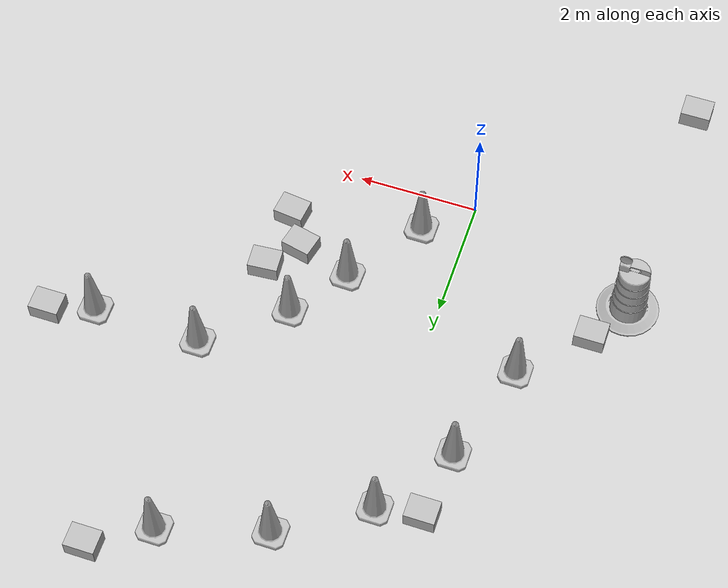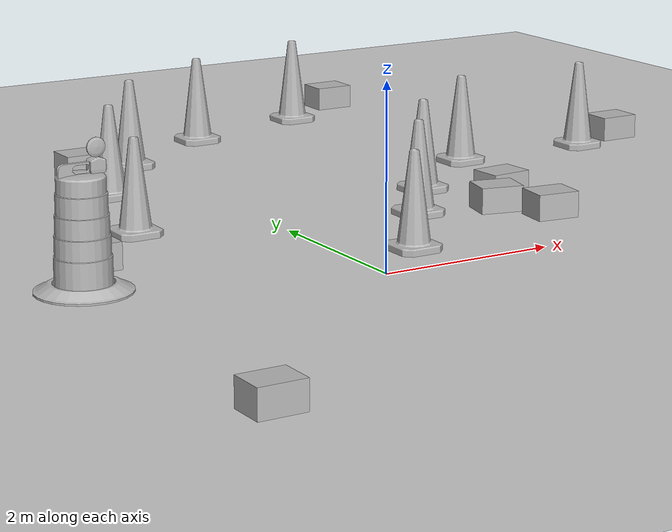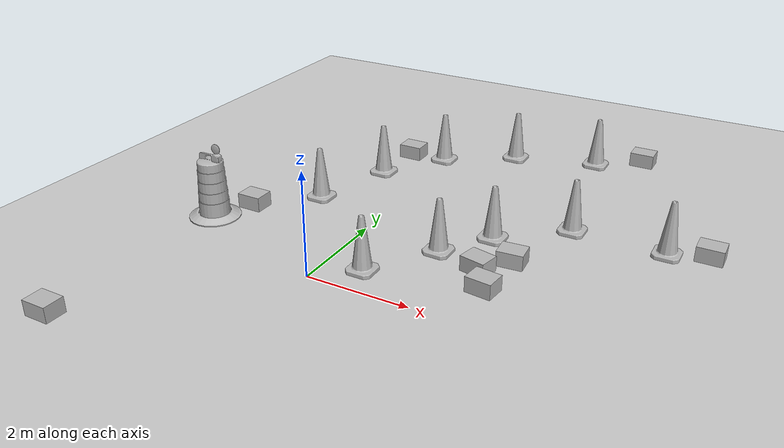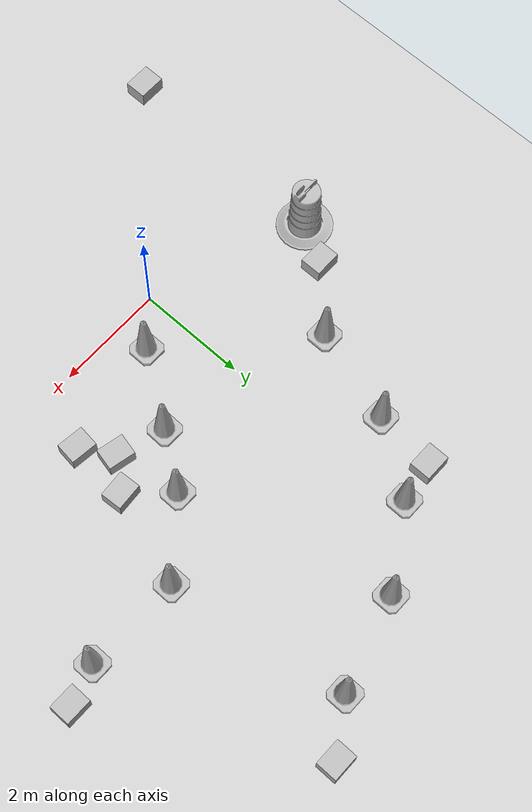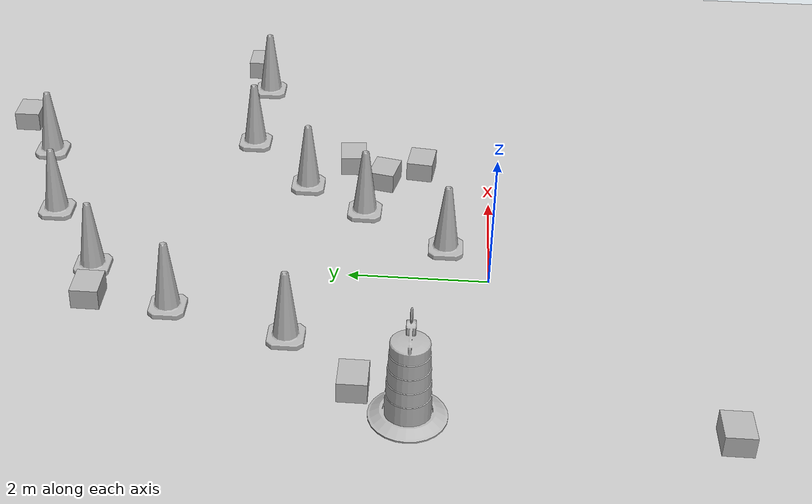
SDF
<sdf version="1.7">
 <world name="default">
  <light name="sun" type="directional">
   <pose>0 0 10 0 -0 0</pose>
   <diffuse>0.8 0.8 0.8 1</diffuse>
   <specular>0.2 0.2 0.2 1</specular>
   <attenuation>
    <range>1000</range>
    <constant>0.9</constant>
    <linear>0.01</linear>
    <quadratic>0.001</quadratic>
   </attenuation>
   <direction>-0.5 0.1 -0.9</direction>
   <spot><inner_angle>0</inner_angle><outer_angle>0</outer_angle><falloff>0</falloff></spot>
  </light>
  <model name="ground_plane">
   <static>1</static>
   <link name="link">
    <collision name="collision">
     <geometry><plane><normal>0 0 1</normal><size>100 100</size></plane></geometry>
     <surface>
      <contact><collide_bitmask>65535</collide_bitmask></contact>
      <friction><ode><mu>100</mu><mu2>50</mu2></ode></friction>
     </surface>
    </collision>
    <visual name="visual">
     <cast_shadows>0</cast_shadows>
     <geometry><plane><normal>0 0 1</normal><size>100 100</size></plane></geometry>
     <material>
      <script><uri>file://media/materials/scripts/gazebo.material</uri><name>Gazebo/Grey</name></script>
     </material>
    </visual>
   </link>
  </model>
  <gravity>0 0 -9.8</gravity>
  <magnetic_field>6e-06 2.3e-05 -4.2e-05</magnetic_field>
  <atmosphere type="adiabatic"/>
  <physics type="ode">
   <max_step_size>0.001</max_step_size>
   <real_time_factor>1</real_time_factor>
   <real_time_update_rate>1000</real_time_update_rate>
  </physics>
  <scene><ambient>0.4 0.4 0.4 1</ambient><background>0.7 0.7 0.7 1</background><shadows>1</shadows></scene>
  <spherical_coordinates>
   <surface_model>EARTH_WGS84</surface_model>
   <latitude_deg>0</latitude_deg>
   <longitude_deg>0</longitude_deg>
   <elevation>0</elevation>
   <heading_deg>0</heading_deg>
  </spherical_coordinates>
  <model name="cardboard_box">
   <pose>-3.02928 -2.994 0.149 0 -0 0</pose>
   <link name="link">
    <inertial>
     <mass>2</mass>
     <inertia>
      <ixx>0.0416667</ixx>
      <ixy>0</ixy>
      <ixz>0</ixz>
      <iyy>0.0566667</iyy>
      <iyz>0</iyz>
      <izz>0.0683333</izz>
     </inertia>
    </inertial>
    <collision name="collision">
     <geometry><box><size>0.5 0.4 0.3</size></box></geometry>
     <surface>
      <friction><ode><mu>1</mu><mu2>1</mu2></ode></friction>
      <contact><ode><kp>1e+07</kp><kd>1</kd><min_depth>0.001</min_depth><max_vel>0.1</max_vel></ode></contact>
     </surface>
    </collision>
    <visual name="visual">
     <pose>0 0 -0.15 0 -0 0</pose>
     <geometry>
      <mesh><uri>model://cardboard_box/meshes/cardboard_box.dae</uri><scale>1.25932 1.00745 0.755591</scale></mesh>
     </geometry>
    </visual>
   </link>
  </model>
  <model name="Construction Barrel">
   <link name="link">
    <inertial>
     <pose>0 0 0.4 0 -0 0</pose>
     <mass>500</mass>
     <inertia><ixx>51.2096</ixx><iyy>51.2096</iyy><izz>25</izz><ixy>0</ixy><ixz>0</ixz><iyz>0</iyz></inertia>
    </inertial>
    <collision name="collision">
     <geometry><mesh><uri>model://construction_barrel/meshes/construction_barrel.dae</uri></mesh></geometry>
    </collision>
    <visual name="visual">
     <geometry><mesh><uri>model://construction_barrel/meshes/construction_barrel.dae</uri></mesh></geometry>
    </visual>
   </link>
   <pose>-2.89809 1.02762 -1e-06 4e-06 -2e-06 -2.8e-05</pose>
  </model>
  <model name="Construction Cone">
   <link name="link">
    <collision name="collision">
     <geometry>
      <mesh><scale>10 10 10</scale><uri>model://construction_cone/meshes/construction_cone.dae</uri></mesh>
     </geometry>
    </collision>
    <visual name="visual">
     <geometry>
      <mesh><scale>10 10 10</scale><uri>model://construction_cone/meshes/construction_cone.dae</uri></mesh>
     </geometry>
    </visual>
    <inertial>
     <inertia><ixx>1</ixx><ixy>0</ixy><ixz>0</ixz><iyy>1</iyy><iyz>0</iyz><izz>1</izz></inertia>
     <mass>1</mass>
    </inertial>
   </link>
   <pose>-1.50576 2.72131 -0 0 -0 0</pose>
  </model>
  <model name="Construction Cone_0">
   <link name="link">
    <collision name="collision">
     <geometry>
      <mesh><scale>10 10 10</scale><uri>model://construction_cone/meshes/construction_cone.dae</uri></mesh>
     </geometry>
    </collision>
    <visual name="visual">
     <geometry>
      <mesh><scale>10 10 10</scale><uri>model://construction_cone/meshes/construction_cone.dae</uri></mesh>
     </geometry>
    </visual>
    <inertial>
     <inertia><ixx>1</ixx><ixy>0</ixy><ixz>0</ixz><iyy>1</iyy><iyz>0</iyz><izz>1</izz></inertia>
     <mass>1</mass>
    </inertial>
   </link>
   <pose>-1 4.42378 -0 0 -0 0</pose>
  </model>
  <model name="Construction Cone_0_clone">
   <link name="link">
    <collision name="collision">
     <geometry>
      <mesh><scale>10 10 10</scale><uri>model://construction_cone/meshes/construction_cone.dae</uri></mesh>
     </geometry>
    </collision>
    <visual name="visual">
     <geometry>
      <mesh><scale>10 10 10</scale><uri>model://construction_cone/meshes/construction_cone.dae</uri></mesh>
     </geometry>
    </visual>
    <inertial>
     <inertia><ixx>1</ixx><ixy>0</ixy><ixz>0</ixz><iyy>1</iyy><iyz>0</iyz><izz>1</izz></inertia>
     <mass>1</mass>
    </inertial>
   </link>
   <pose>-0.133963 5.67409 -0 0 -1e-06 0</pose>
  </model>
  <model name="Construction Cone_0_clone_0">
   <link name="link">
    <collision name="collision">
     <geometry>
      <mesh><scale>10 10 10</scale><uri>model://construction_cone/meshes/construction_cone.dae</uri></mesh>
     </geometry>
    </collision>
    <visual name="visual">
     <geometry>
      <mesh><scale>10 10 10</scale><uri>model://construction_cone/meshes/construction_cone.dae</uri></mesh>
     </geometry>
    </visual>
    <inertial>
     <inertia><ixx>1</ixx><ixy>0</ixy><ixz>0</ixz><iyy>1</iyy><iyz>0</iyz><izz>1</izz></inertia>
     <mass>1</mass>
    </inertial>
   </link>
   <pose>1.24709 6.55085 -0 0 -1e-06 0</pose>
  </model>
  <model name="Construction Cone_0_clone_1">
   <link name="link">
    <collision name="collision">
     <geometry>
      <mesh><scale>10 10 10</scale><uri>model://construction_cone/meshes/construction_cone.dae</uri></mesh>
     </geometry>
    </collision>
    <visual name="visual">
     <geometry>
      <mesh><scale>10 10 10</scale><uri>model://construction_cone/meshes/construction_cone.dae</uri></mesh>
     </geometry>
    </visual>
    <inertial>
     <inertia><ixx>1</ixx><ixy>0</ixy><ixz>0</ixz><iyy>1</iyy><iyz>0</iyz><izz>1</izz></inertia>
     <mass>1</mass>
    </inertial>
   </link>
   <pose>2.9537 7.05208 -0 0 -0 0</pose>
  </model>
  <model name="Construction Cone_0_clone_2">
   <link name="link">
    <collision name="collision">
     <geometry>
      <mesh><scale>10 10 10</scale><uri>model://construction_cone/meshes/construction_cone.dae</uri></mesh>
     </geometry>
    </collision>
    <visual name="visual">
     <geometry>
      <mesh><scale>10 10 10</scale><uri>model://construction_cone/meshes/construction_cone.dae</uri></mesh>
     </geometry>
    </visual>
    <inertial>
     <inertia><ixx>1</ixx><ixy>0</ixy><ixz>0</ixz><iyy>1</iyy><iyz>0</iyz><izz>1</izz></inertia>
     <mass>1</mass>
    </inertial>
   </link>
   <pose>0.741697 0.628624 -1e-05 -0 -0 -0</pose>
  </model>
  <model name="Construction Cone_0_clone_3">
   <link name="link">
    <collision name="collision">
     <geometry>
      <mesh><scale>10 10 10</scale><uri>model://construction_cone/meshes/construction_cone.dae</uri></mesh>
     </geometry>
    </collision>
    <visual name="visual">
     <geometry>
      <mesh><scale>10 10 10</scale><uri>model://construction_cone/meshes/construction_cone.dae</uri></mesh>
     </geometry>
    </visual>
    <inertial>
     <inertia><ixx>1</ixx><ixy>0</ixy><ixz>0</ixz><iyy>1</iyy><iyz>0</iyz><izz>1</izz></inertia>
     <mass>1</mass>
    </inertial>
   </link>
   <pose>1.61041 1.87371 -0 0 -1e-06 -0.020703</pose>
  </model>
  <model name="Construction Cone_0_clone_4">
   <link name="link">
    <collision name="collision">
     <geometry>
      <mesh><scale>10 10 10</scale><uri>model://construction_cone/meshes/construction_cone.dae</uri></mesh>
     </geometry>
    </collision>
    <visual name="visual">
     <geometry>
      <mesh><scale>10 10 10</scale><uri>model://construction_cone/meshes/construction_cone.dae</uri></mesh>
     </geometry>
    </visual>
    <inertial>
     <inertia><ixx>1</ixx><ixy>0</ixy><ixz>0</ixz><iyy>1</iyy><iyz>0</iyz><izz>1</izz></inertia>
     <mass>1</mass>
    </inertial>
   </link>
   <pose>2.28011 2.80323 -8e-06 1e-06 -0 0</pose>
  </model>
  <model name="Construction Cone_0_clone_5">
   <link name="link">
    <collision name="collision">
     <geometry>
      <mesh><scale>10 10 10</scale><uri>model://construction_cone/meshes/construction_cone.dae</uri></mesh>
     </geometry>
    </collision>
    <visual name="visual">
     <geometry>
      <mesh><scale>10 10 10</scale><uri>model://construction_cone/meshes/construction_cone.dae</uri></mesh>
     </geometry>
    </visual>
    <inertial>
     <inertia><ixx>1</ixx><ixy>0</ixy><ixz>0</ixz><iyy>1</iyy><iyz>0</iyz><izz>1</izz></inertia>
     <mass>1</mass>
    </inertial>
   </link>
   <pose>3.49548 3.79807 -0 0 -0 0</pose>
  </model>
  <model name="Construction Cone_0_clone_6">
   <link name="link">
    <collision name="collision">
     <geometry>
      <mesh><scale>10 10 10</scale><uri>model://construction_cone/meshes/construction_cone.dae</uri></mesh>
     </geometry>
    </collision>
    <visual name="visual">
     <geometry>
      <mesh><scale>10 10 10</scale><uri>model://construction_cone/meshes/construction_cone.dae</uri></mesh>
     </geometry>
    </visual>
    <inertial>
     <inertia><ixx>1</ixx><ixy>0</ixy><ixz>0</ixz><iyy>1</iyy><iyz>0</iyz><izz>1</izz></inertia>
     <mass>1</mass>
    </inertial>
   </link>
   <pose>5.28375 3.76325 -0 0 -1e-06 0</pose>
  </model>
  <model name="cardboard_box_clone">
   <pose>2.50396 1.62001 0.149 0 -0 -0.220731</pose>
   <link name="link">
    <inertial>
     <mass>2</mass>
     <inertia>
      <ixx>0.0416667</ixx>
      <ixy>0</ixy>
      <ixz>0</ixz>
      <iyy>0.0566667</iyy>
      <iyz>0</iyz>
      <izz>0.0683333</izz>
     </inertia>
    </inertial>
    <collision name="collision">
     <geometry><box><size>0.5 0.4 0.3</size></box></geometry>
     <surface>
      <friction><ode><mu>1</mu><mu2>1</mu2></ode></friction>
      <contact><ode><kp>1e+07</kp><kd>1</kd><min_depth>0.001</min_depth><max_vel>0.1</max_vel></ode></contact>
     </surface>
    </collision>
    <visual name="visual">
     <pose>0 0 -0.15 0 -0 0</pose>
     <geometry>
      <mesh><uri>model://cardboard_box/meshes/cardboard_box.dae</uri><scale>1.25932 1.00745 0.755591</scale></mesh>
     </geometry>
    </visual>
   </link>
  </model>
  <model name="cardboard_box_clone_0">
   <pose>2.93874 2.14078 0.149203 -0.001017 -0 0.075653</pose>
   <link name="link">
    <inertial>
     <mass>2</mass>
     <inertia>
      <ixx>0.0416667</ixx>
      <ixy>0</ixy>
      <ixz>0</ixz>
      <iyy>0.0566667</iyy>
      <iyz>0</iyz>
      <izz>0.0683333</izz>
     </inertia>
    </inertial>
    <collision name="collision">
     <geometry><box><size>0.5 0.4 0.3</size></box></geometry>
     <surface>
      <friction><ode><mu>1</mu><mu2>1</mu2></ode></friction>
      <contact><ode><kp>1e+07</kp><kd>1</kd><min_depth>0.001</min_depth><max_vel>0.1</max_vel></ode></contact>
     </surface>
    </collision>
    <visual name="visual">
     <pose>0 0 -0.15 0 -0 0</pose>
     <geometry>
      <mesh><uri>model://cardboard_box/meshes/cardboard_box.dae</uri><scale>1.25932 1.00745 0.755591</scale></mesh>
     </geometry>
    </visual>
   </link>
  </model>
  <model name="cardboard_box_clone_1">
   <pose>2.85071 1.05819 0.149 0 0 -0.115711</pose>
   <link name="link">
    <inertial>
     <mass>2</mass>
     <inertia>
      <ixx>0.0416667</ixx>
      <ixy>0</ixy>
      <ixz>0</ixz>
      <iyy>0.0566667</iyy>
      <iyz>0</iyz>
      <izz>0.0683333</izz>
     </inertia>
    </inertial>
    <collision name="collision">
     <geometry><box><size>0.5 0.4 0.3</size></box></geometry>
     <surface>
      <friction><ode><mu>1</mu><mu2>1</mu2></ode></friction>
      <contact><ode><kp>1e+07</kp><kd>1</kd><min_depth>0.001</min_depth><max_vel>0.1</max_vel></ode></contact>
     </surface>
    </collision>
    <visual name="visual">
     <pose>0 0 -0.15 0 -0 0</pose>
     <geometry>
      <mesh><uri>model://cardboard_box/meshes/cardboard_box.dae</uri><scale>1.25932 1.00745 0.755591</scale></mesh>
     </geometry>
    </visual>
   </link>
  </model>
  <model name="cardboard_box_clone_2">
   <pose>-0.860446 5.56809 0.149 0 -0 0</pose>
   <link name="link">
    <inertial>
     <mass>2</mass>
     <inertia>
      <ixx>0.0416667</ixx>
      <ixy>0</ixy>
      <ixz>0</ixz>
      <iyy>0.0566667</iyy>
      <iyz>0</iyz>
      <izz>0.0683333</izz>
     </inertia>
    </inertial>
    <collision name="collision">
     <geometry><box><size>0.5 0.4 0.3</size></box></geometry>
     <surface>
      <friction><ode><mu>1</mu><mu2>1</mu2></ode></friction>
      <contact><ode><kp>1e+07</kp><kd>1</kd><min_depth>0.001</min_depth><max_vel>0.1</max_vel></ode></contact>
     </surface>
    </collision>
    <visual name="visual">
     <pose>0 0 -0.15 0 -0 0</pose>
     <geometry>
      <mesh><uri>model://cardboard_box/meshes/cardboard_box.dae</uri><scale>1.25932 1.00745 0.755591</scale></mesh>
     </geometry>
    </visual>
   </link>
  </model>
  <model name="cardboard_box_clone_3">
   <pose>3.86009 7.64405 0.149 0 -0 0</pose>
   <link name="link">
    <inertial>
     <mass>2</mass>
     <inertia>
      <ixx>0.0416667</ixx>
      <ixy>0</ixy>
      <ixz>0</ixz>
      <iyy>0.0566667</iyy>
      <iyz>0</iyz>
      <izz>0.0683333</izz>
     </inertia>
    </inertial>
    <collision name="collision">
     <geometry><box><size>0.5 0.4 0.3</size></box></geometry>
     <surface>
      <friction><ode><mu>1</mu><mu2>1</mu2></ode></friction>
      <contact><ode><kp>1e+07</kp><kd>1</kd><min_depth>0.001</min_depth><max_vel>0.1</max_vel></ode></contact>
     </surface>
    </collision>
    <visual name="visual">
     <pose>0 0 -0.15 0 -0 0</pose>
     <geometry>
      <mesh><uri>model://cardboard_box/meshes/cardboard_box.dae</uri><scale>1.25932 1.00745 0.755591</scale></mesh>
     </geometry>
    </visual>
   </link>
  </model>
  <model name="cardboard_box_clone_4">
   <pose>6 4 0.149 0 -0 0</pose>
   <link name="link">
    <inertial>
     <mass>2</mass>
     <inertia>
      <ixx>0.0416667</ixx>
      <ixy>0</ixy>
      <ixz>0</ixz>
      <iyy>0.0566667</iyy>
      <iyz>0</iyz>
      <izz>0.0683333</izz>
     </inertia>
    </inertial>
    <collision name="collision">
     <geometry><box><size>0.5 0.4 0.3</size></box></geometry>
     <surface>
      <friction><ode><mu>1</mu><mu2>1</mu2></ode></friction>
      <contact><ode><kp>1e+07</kp><kd>1</kd><min_depth>0.001</min_depth><max_vel>0.1</max_vel></ode></contact>
     </surface>
    </collision>
    <visual name="visual">
     <pose>0 0 -0.15 0 -0 0</pose>
     <geometry>
      <mesh><uri>model://cardboard_box/meshes/cardboard_box.dae</uri><scale>1.25932 1.00745 0.755591</scale></mesh>
     </geometry>
    </visual>
   </link>
  </model>
  <model name="cardboard_box_clone_5">
   <pose>-2.47307 1.74609 0.149 0 -0 0</pose>
   <link name="link">
    <inertial>
     <mass>2</mass>
     <inertia>
      <ixx>0.0416667</ixx>
      <ixy>0</ixy>
      <ixz>0</ixz>
      <iyy>0.0566667</iyy>
      <iyz>0</iyz>
      <izz>0.0683333</izz>
     </inertia>
    </inertial>
    <collision name="collision">
     <geometry><box><size>0.5 0.4 0.3</size></box></geometry>
     <surface>
      <friction><ode><mu>1</mu><mu2>1</mu2></ode></friction>
      <contact><ode><kp>1e+07</kp><kd>1</kd><min_depth>0.001</min_depth><max_vel>0.1</max_vel></ode></contact>
     </surface>
    </collision>
    <visual name="visual">
     <pose>0 0 -0.15 0 -0 0</pose>
     <geometry>
      <mesh><uri>model://cardboard_box/meshes/cardboard_box.dae</uri><scale>1.25932 1.00745 0.755591</scale></mesh>
     </geometry>
    </visual>
   </link>
  </model>
 </world>
</sdf>
